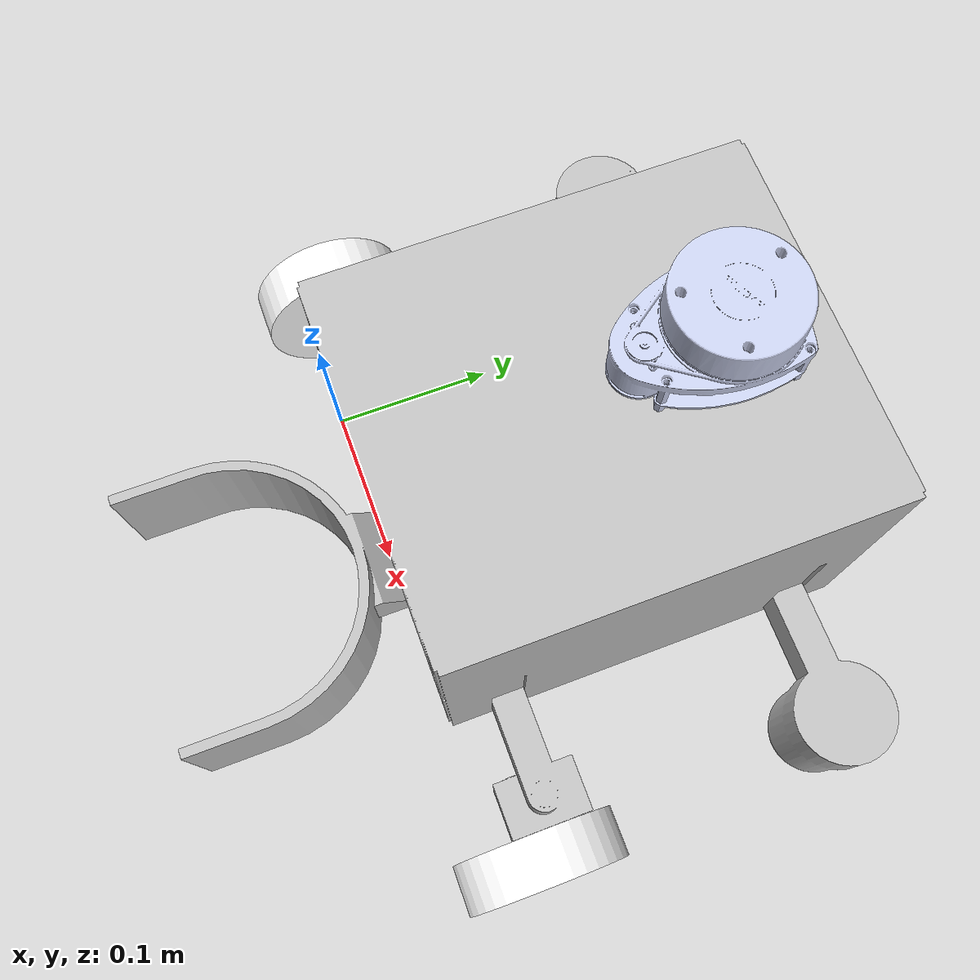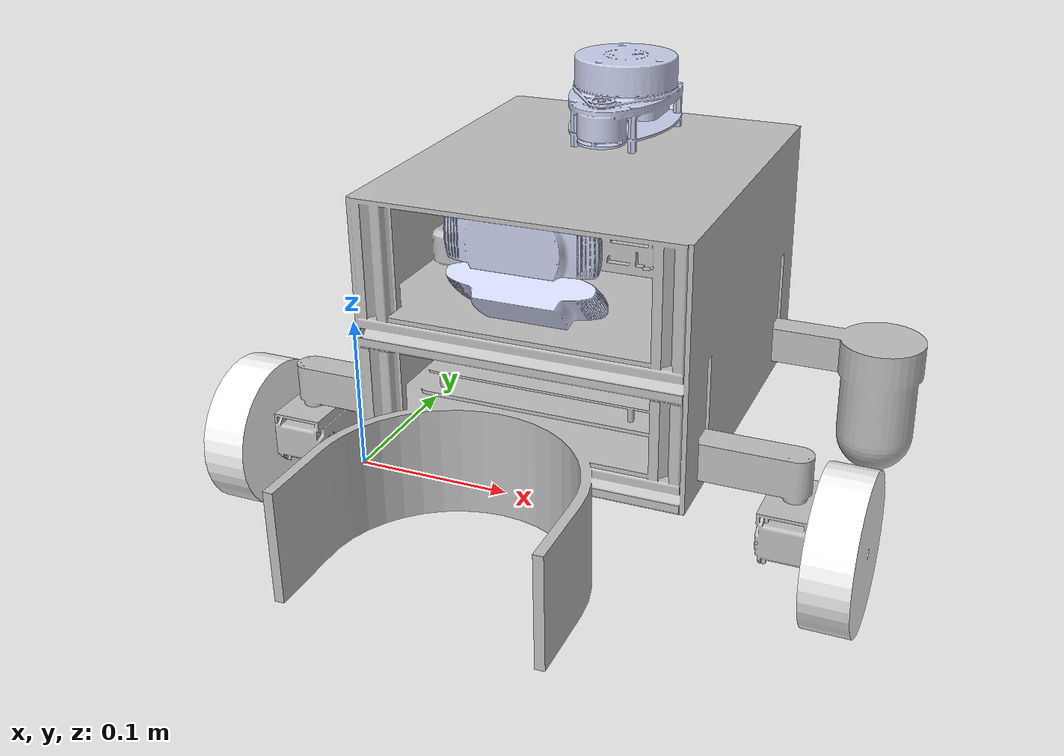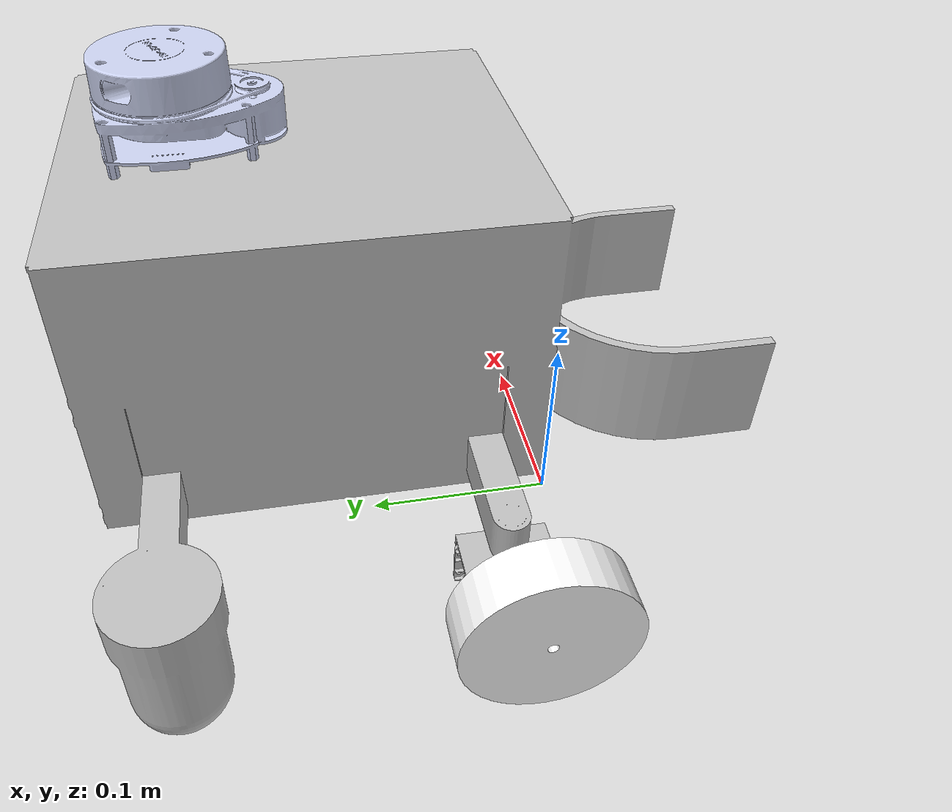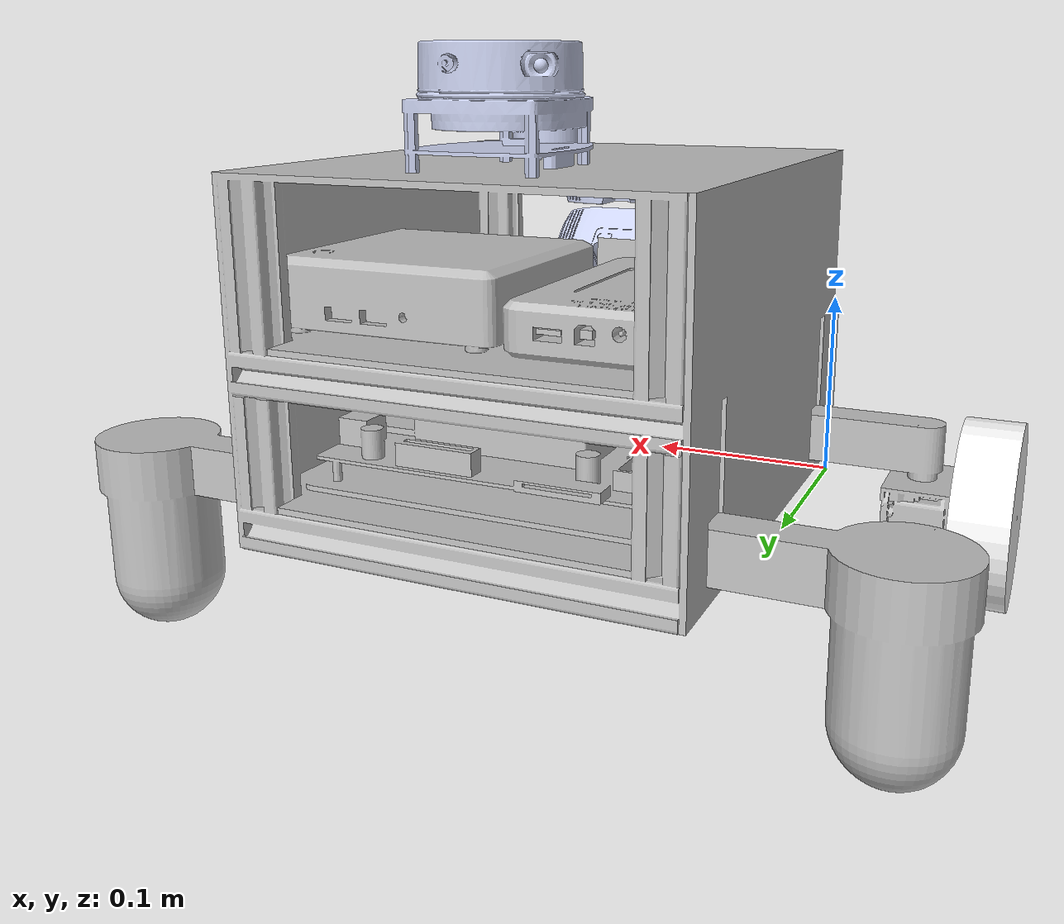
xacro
<?xml version="1.0" encoding="utf-8"?>
<robot
  name="lide"  xmlns:xacro="http://ros.org/wiki/xacro">

  <xacro:include filename="$(find lide)/urdf/lide.gazebo.xacro"/>

    <link name="base_footprint"/>

       <joint name="base_joint" type="fixed">
         <parent link="base_footprint"/>
         <child link="base_link" />
         <origin xyz="0 0 0.010" rpy="0 0 0"/>
       </joint>

  <link
    name="base_link">
    <inertial>
      <origin
        xyz="0.108922864318346 0.0847241760555166 -0.123403521783606"
        rpy="0 0 0" />
      <mass
        value="3.90118326560917" />
      <inertia
        ixx="0.0186236720310462"
        ixy="-3.31789538657199E-07"
        ixz="-1.46573682204449E-06"
        iyy="0.0179160741187244"
        iyz="-8.06514530944488E-06"
        izz="0.00875282674130433" />
    </inertial>
    <visual>
      <origin
        xyz="0 0 0"
        rpy="0 0 0" />
      <geometry>
        <mesh
          filename="package://lide/meshes/base_link.STL" />
      </geometry>
      <material
        name="">
        <color
          rgba="0.752941176470588 0.752941176470588 0.752941176470588 1" />
      </material>
    </visual>
    <collision>
      <origin
        xyz="0 0 0"
        rpy="0 0 0" />
      <geometry>
        <mesh
          filename="package://lide/meshes/base_link.STL" />
      </geometry>
    </collision>
  </link>
  <link
    name="LFS">
    <inertial>
      <origin
        xyz="0.00280634310894718 0.0174176382369257 0.00735669197046057"
        rpy="0 0 0" />
      <mass
        value="0.26437001106024" />
      <inertia
        ixx="6.29151972289897E-05"
        ixy="2.96411876511088E-09"
        ixz="1.64845302056741E-08"
        iyy="6.2207209100296E-05"
        iyz="1.56454773175247E-07"
        izz="3.20746276473134E-05" />
    </inertial>
    <visual>
      <origin
        xyz="0 0 0"
        rpy="0 0 0" />
      <geometry>
        <mesh
          filename="package://lide/meshes/LFS.STL" />
      </geometry>
      <material
        name="">
        <color
          rgba="0.752941176470588 0.752941176470588 0.752941176470588 1" />
      </material>
    </visual>
    <collision>
      <origin
        xyz="0 0 0"
        rpy="0 0 0" />
      <geometry>
        <mesh
          filename="package://lide/meshes/LFS.STL" />
      </geometry>
    </collision>
  </link>
  <joint
    name="LFS"
    type="fixed">
    <origin
      xyz="0.24112 0.018826 0.0185"
      rpy="0 1.5708 0" />
    <parent
      link="base_link" />
    <child
      link="LFS" />
    <axis
      xyz="1 0 0" />
    <limit
      lower="0"
      upper="0"
      effort="0"
      velocity="0" />
  </joint>
  <link
    name="LFW">
    <inertial>
      <origin
        xyz="0.015 1.73472347597681E-18 3.46944695195361E-18"
        rpy="0 0 0" />
      <mass
        value="0.239316435984071" />
      <inertia
        ixx="0.00030040943490763"
        ixy="-7.48206746073194E-37"
        ixz="-1.7790715949144E-38"
        iyy="0.00016815345015262"
        iyz="-1.54101050386111E-36"
        izz="0.00016815345015262" />
    </inertial>
    <visual>
      <origin
        xyz="0 0 0"
        rpy="0 0 0" />
      <geometry>
        <mesh
          filename="package://lide/meshes/LFW.STL" />
      </geometry>
      <material
        name="">
        <color
          rgba="1 1 1 1" />
      </material>
    </visual>
    <collision>
      <origin
        xyz="0 0 0"
        rpy="0 0 0" />
      <geometry>
        <mesh
          filename="package://lide/meshes/LFW.STL" />
      </geometry>
    </collision>
  </link>
  <joint
    name="LFW"
    type="continuous">
    <origin
      xyz="0.033301 0.0046744 0.050633"
      rpy="1.5708 -1.5708 0" />
    <parent
      link="LFS" />
    <child
      link="LFW" />
    <axis
      xyz="1 0 0" />
    <limit
      effort="3.1"
      velocity="7" />
  </joint>
  <link
    name="RFS">
    <inertial>
      <origin
        xyz="0.00281505005012283 0.0179312188717306 0.00735669197046058"
        rpy="0 0 0" />
      <mass
        value="0.26437001106024" />
      <inertia
        ixx="6.29151972289897E-05"
        ixy="2.96411876510909E-09"
        ixz="-1.64845302056387E-08"
        iyy="6.2207209100296E-05"
        iyz="-1.56454773175214E-07"
        izz="3.20746276473134E-05" />
    </inertial>
    <visual>
      <origin
        xyz="0 0 0"
        rpy="0 0 0" />
      <geometry>
        <mesh
          filename="package://lide/meshes/RFS.STL" />
      </geometry>
      <material
        name="">
        <color
          rgba="0.752941176470588 0.752941176470588 0.752941176470588 1" />
      </material>
    </visual>
    <collision>
      <origin
        xyz="0 0 0"
        rpy="0 0 0" />
      <geometry>
        <mesh
          filename="package://lide/meshes/RFS.STL" />
      </geometry>
    </collision>
  </link>
  <joint
    name="RFS"
    type="fixed">
    <origin
      xyz="-0.025117 0.054174 0.0185"
      rpy="3.1416 1.5708 0" />
    <parent
      link="base_link" />
    <child
      link="RFS" />
    <axis
      xyz="1 0 0" />
    <limit
      lower="0"
      upper="0"
      effort="0"
      velocity="0" />
  </joint>
  <link
    name="RFW">
    <inertial>
      <origin
        xyz="-0.015 0 3.46944695195361E-18"
        rpy="0 0 0" />
      <mass
        value="0.239316435984071" />
      <inertia
        ixx="0.000300409434907629"
        ixy="-2.41075835715216E-37"
        ixz="9.05650754599917E-37"
        iyy="0.00016815345015262"
        iyz="-1.6940658945086E-21"
        izz="0.00016815345015262" />
    </inertial>
    <visual>
      <origin
        xyz="0 0 0"
        rpy="0 0 0" />
      <geometry>
        <mesh
          filename="package://lide/meshes/RFW.STL" />
      </geometry>
      <material
        name="">
        <color
          rgba="1 1 1 1" />
      </material>
    </visual>
    <collision>
      <origin
        xyz="0 0 0"
        rpy="0 0 0" />
      <geometry>
        <mesh
          filename="package://lide/meshes/RFW.STL" />
      </geometry>
    </collision>
  </link>
  <joint
    name="RFW"
    type="continuous">
    <origin
      xyz="0.033299 0.030674 0.050633"
      rpy="1.64 1.5708 0" />
    <parent
      link="RFS" />
    <child
      link="RFW" />
    <axis
      xyz="1 0 0" />
    <limit
      effort="3.1"
      velocity="7" />
  </joint>
  <link
    name="LBS">
    <inertial>
      <origin
        xyz="0.0023415757137733 0.011605194759345 0.0215324510222362"
        rpy="0 0 0" />
      <mass
        value="0.18193357253929" />
      <inertia
        ixx="0.000158415198867683"
        ixy="3.54095934938036E-07"
        ixz="-1.52419258301436E-20"
        iyy="0.000187903911280684"
        iyz="-5.30577757365107E-20"
        izz="0.000106956315729353" />
    </inertial>
    <visual>
      <origin
        xyz="0 0 0"
        rpy="0 0 0" />
      <geometry>
        <mesh
          filename="package://lide/meshes/LBS.STL" />
      </geometry>
      <material
        name="">
        <color
          rgba="0.752941176470588 0.752941176470588 0.752941176470588 1" />
      </material>
    </visual>
    <collision>
      <origin
        xyz="0 0 0"
        rpy="0 0 0" />
      <geometry>
        <mesh
          filename="package://lide/meshes/LBS.STL" />
      </geometry>
    </collision>
  </link>
  <joint
    name="LBS"
    type="fixed">
    <origin
      xyz="0.28235 0.22575 0.0185"
      rpy="3.1416 0 0" />
    <parent
      link="base_link" />
    <child
      link="LBS" />
    <axis
      xyz="0 0 1" />
    <limit
      lower="0"
      upper="0"
      effort="0"
      velocity="0" />
  </joint>
  <link
    name="RBS">
    <inertial>
      <origin
        xyz="0.00234157571377328 0.0116051947593451 0.0215324510222364"
        rpy="0 0 0" />
      <mass
        value="0.18193357253929" />
      <inertia
        ixx="0.000158415198867683"
        ixy="3.54095934938048E-07"
        ixz="-1.01503171135808E-22"
        iyy="0.000187903911280684"
        iyz="-1.82990366647899E-20"
        izz="0.000106956315729353" />
    </inertial>
    <visual>
      <origin
        xyz="0 0 0"
        rpy="0 0 0" />
      <geometry>
        <mesh
          filename="package://lide/meshes/RBS.STL" />
      </geometry>
      <material
        name="">
        <color
          rgba="0.752941176470588 0.752941176470588 0.752941176470588 1" />
      </material>
    </visual>
    <collision>
      <origin
        xyz="0 0 0"
        rpy="0 0 0" />
      <geometry>
        <mesh
          filename="package://lide/meshes/RBS.STL" />
      </geometry>
    </collision>
  </link>
  <joint
    name="RBS"
    type="fixed">
    <origin
      xyz="-0.06635 0.20125 0.0185"
      rpy="3.1416 0 3.1416" />
    <parent
      link="base_link" />
    <child
      link="RBS" />
    <axis
      xyz="0 0 1" />
    <limit
      lower="0"
      upper="0"
      effort="0"
      velocity="0" />
  </joint>

  <joint name="imu_joint" type="fixed">
    <parent link="base_link"/>
    <child link="imu_link"/>
    <origin xyz="0.10701 0.19058 0.20000" rpy="0 0 0"/>
  </joint>

  <link name="imu_link"/>

  <link
    name="fcam">
    <inertial>
      <origin
        xyz="0.000445525090231174 -1.10631679103579E-05 0.00129821973144106"
        rpy="0 0 0" />
      <mass
        value="0.0436119950287128" />
      <inertia
        ixx="2.357070580464E-05"
        ixy="-1.01813691701127E-09"
        ixz="2.17579681215237E-08"
        iyy="4.29479133591134E-06"
        iyz="-8.85791114048082E-10"
        izz="2.21058141232446E-05" />
    </inertial>
    <visual>
      <origin
        xyz="0 0 0"
        rpy="0 0 0" />
      <geometry>
        <mesh
          filename="package://lide/meshes/fcam.STL" />
      </geometry>
      <material
        name="">
        <color
          rgba="0.792156862745098 0.819607843137255 0.933333333333333 1" />
      </material>
    </visual>
    <collision>
      <origin
        xyz="0 0 0"
        rpy="0 0 0" />
      <geometry>
        <mesh
          filename="package://lide/meshes/fcam.STL" />
      </geometry>
    </collision>
  </link>
  <joint
    name="fcam"
    type="fixed">
    <origin
      xyz="0.10801 0.012 0.15299"
      rpy="0 0 -1.5708" />
    <parent
      link="base_link" />
    <child
      link="fcam" />
    <axis
      xyz="0 0 0" />
  </joint>
  <link
    name="bcam">
    <inertial>
      <origin
        xyz="0.000445525343312617 -1.10630004970108E-05 0.0012982197254867"
        rpy="0 0 0" />
      <mass
        value="0.0436119949785285" />
      <inertia
        ixx="2.35707056099599E-05"
        ixy="-1.01834758014098E-09"
        ixz="2.17579332532655E-08"
        iyy="4.29479078276668E-06"
        iyz="-8.85484503922152E-10"
        izz="2.21058144654637E-05" />
    </inertial>
    <visual>
      <origin
        xyz="0 0 0"
        rpy="0 0 0" />
      <geometry>
        <mesh
          filename="package://lide/meshes/bcam.STL" />
      </geometry>
      <material
        name="">
        <color
          rgba="0.792156862745098 0.819607843137255 0.933333333333333 1" />
      </material>
    </visual>
    <collision>
      <origin
        xyz="0 0 0"
        rpy="0 0 0" />
      <geometry>
        <mesh
          filename="package://lide/meshes/bcam.STL" />
      </geometry>
    </collision>
  </link>
  <joint
    name="bcam"
    type="fixed">
    <origin
      xyz="0.10801 0.019081 0.11771"
      rpy="0 0.7854 -1.5708" />
    <parent
      link="base_link" />
    <child
      link="bcam" />
    <axis
      xyz="0 0 0" />
  </joint>
  <link
    name="Lidar">
    <inertial>
      <origin
        xyz="0.0135233599422163 0.000461956326444121 -0.0287648857833805"
        rpy="0 0 0" />
      <mass
        value="0.0730845705160698" />
      <inertia
        ixx="1.95808756903406E-05"
        ixy="-1.0393358977586E-07"
        ixz="-4.28391191160108E-07"
        iyy="2.41250079549543E-05"
        iyz="9.42708084958066E-09"
        izz="4.14184516050746E-05" />
    </inertial>
    <visual>
      <origin
        xyz="0 0 0"
        rpy="0 0 0" />
      <geometry>
        <mesh
          filename="package://lide/meshes/Lidar.STL" />
      </geometry>
      <material
        name="">
        <color
          rgba="0.792156862745098 0.819607843137255 0.933333333333333 1" />
      </material>
    </visual>
    <collision>
      <origin
        xyz="0 0 0"
        rpy="0 0 0" />
      <geometry>
        <mesh
          filename="package://lide/meshes/Lidar.STL" />
      </geometry>
    </collision>
  </link>
  <joint
    name="Lidar"
    type="fixed">
    <origin
      xyz="0.10701 0.19058 0.2245"
      rpy="0 0 -1.5708" />
    <parent
      link="base_link" />
    <child
      link="Lidar" />
    <axis
      xyz="0 0 0" />
  </joint>

  <transmission name="LFW_transmission">
    <type>transmission_interface/SimpleTransmission</type>
    <joint name="LFW">
      <hardwareInterface>hardware_interface/EffortJointInterface</hardwareInterface>
    </joint>
    <actuator name="LFW_motor">
      <hardwareInterface>hardware_interface/EffortJointInterface</hardwareInterface>
      <mechanicalReduction>1</mechanicalReduction>
    </actuator>
  </transmission>

  <transmission name="RFW_transmission">
    <type>transmission_interface/SimpleTransmission</type>
    <joint name="RFW">
      <hardwareInterface>hardware_interface/EffortJointInterface</hardwareInterface>
    </joint>
    <actuator name="RFW_motor">
      <hardwareInterface>hardware_interface/EffortJointInterface</hardwareInterface>
      <mechanicalReduction>1</mechanicalReduction>
    </actuator>
  </transmission>

</robot>
